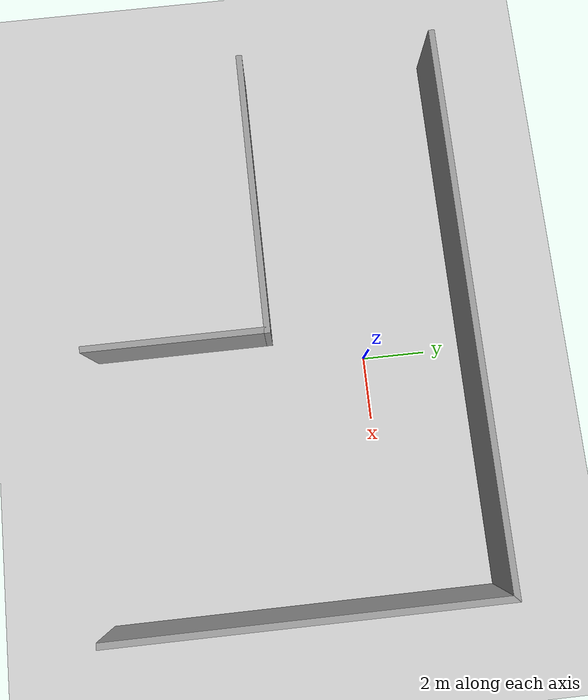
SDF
<?xml version="1.0" ?>
<sdf version="1.5">
  <world name="default">
    <!-- A global light source -->
    <include>
      <uri>model://sun</uri>
    </include>
    <!-- A ground plane -->
    <include>
      <uri>model://ground_plane</uri>
    </include>
    <model name="static_world">
    <link name="Wall_0">
      <collision name="Wall_0_Collision">
        <geometry>
          <box>
            <size>9.19475 0.2 2.5</size>
          </box>
        </geometry>
        <pose>0 0 1.25 0 -0 0</pose>
      </collision>
      <visual name="Wall_0_Visual">
        <pose>0 0 1.25 0 -0 0</pose>
        <geometry>
          <box>
            <size>9.19475 0.2 2.5</size>
          </box>
        </geometry>
        <material>
          <script>
            <uri>file://media/materials/scripts/gazebo.material</uri>
            <name>Gazebo/Grey</name>
          </script>
        </material>
      </visual>
      <velocity_decay>
        <linear>0</linear>
        <angular>0</angular>
      </velocity_decay>
      <pose>-5.36653 -3.05636 0 0 -0 0</pose>
    </link>
    <link name="Wall_1">
      <collision name="Wall_1_Collision">
        <geometry>
          <box>
            <size>5.80977 0.2 2.5</size>
          </box>
        </geometry>
        <pose>0 0 1.25 0 -0 0</pose>
      </collision>
      <visual name="Wall_1_Visual">
        <pose>0 0 1.25 0 -0 0</pose>
        <geometry>
          <box>
            <size>5.80977 0.2 2.5</size>
          </box>
        </geometry>
        <material>
          <script>
            <uri>file://media/materials/scripts/gazebo.material</uri>
            <name>Gazebo/Grey</name>
          </script>
        </material>
      </visual>
      <velocity_decay>
        <linear>0</linear>
        <angular>0</angular>
      </velocity_decay>
      <pose>-0.869202 -5.86124 0 0 0 -1.5708</pose>
    </link>
    <link name="Wall_4">
      <collision name="Wall_4_Collision">
        <geometry>
          <box>
            <size>17.9656 0.2 2.5</size>
          </box>
        </geometry>
        <pose>0 0 1.25 0 -0 0</pose>
      </collision>
      <visual name="Wall_4_Visual">
        <pose>0 0 1.25 0 -0 0</pose>
        <geometry>
          <box>
            <size>17.9656 0.2 2.5</size>
          </box>
        </geometry>
        <material>
          <script>
            <uri>file://media/materials/scripts/gazebo.material</uri>
            <name>Gazebo/Grey</name>
          </script>
        </material>
      </visual>
      <velocity_decay>
        <linear>0</linear>
        <angular>0</angular>
      </velocity_decay>
      <pose>-1.20431 3.27817 0 0 -0 0</pose>
    </link>
    <link name="Wall_5">
      <collision name="Wall_5_Collision">
        <geometry>
          <box>
            <size>12.1743 0.2 2.5</size>
          </box>
        </geometry>
        <pose>0 0 1.25 0 -0 0</pose>
      </collision>
      <visual name="Wall_5_Visual">
        <pose>0 0 1.25 0 -0 0</pose>
        <geometry>
          <box>
            <size>12.1743 0.2 2.5</size>
          </box>
        </geometry>
        <material>
          <script>
            <uri>file://media/materials/scripts/gazebo.material</uri>
            <name>Gazebo/Grey</name>
          </script>
        </material>
      </visual>
      <velocity_decay>
        <linear>0</linear>
        <angular>0</angular>
      </velocity_decay>
      <pose>7.67847 -2.70895 0 0 0 -1.5708</pose>
    </link>
    <static>1</static>
  </model>
  </world>
</sdf>
